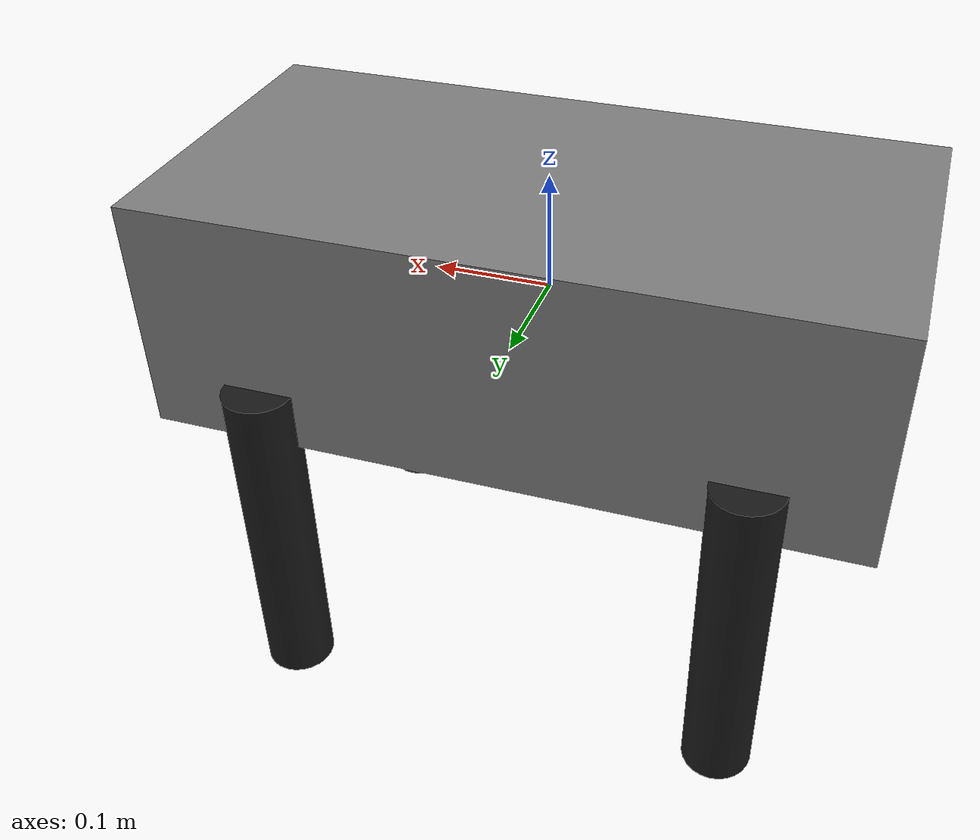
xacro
<?xml version="1.0"?>

<robot
  name="go2"
  xmlns:xacro="http://www.ros.org/wiki/xacro">

  <!-- ARGUMENTS -->

  <xacro:arg name="robot_namespace" default="go2_sim"/>

  <!-- MATERIALS -->

  <material name="gray">
    <color rgba="0.5 0.5 0.5 1.0"/>
  </material>

  <material name="black">
    <color rgba="0.1 0.1 0.1 1.0"/>
  </material>

  <!-- BODY -->

  <link name="base_link">

    <inertial>
      <mass value="12.0"/>
      <origin xyz="0 0 0"/>

      <inertia
        ixx="0.1"
        ixy="0.0"
        ixz="0.0"
        iyy="0.1"
        iyz="0.0"
        izz="0.1"/>
    </inertial>

    <visual>
      <geometry>
        <box size="0.60 0.30 0.20"/>
      </geometry>

      <material name="gray"/>
    </visual>

    <collision>
      <geometry>
        <box size="0.60 0.30 0.20"/>
      </geometry>
    </collision>

  </link>

  <!-- LEGS -->

  <xacro:macro name="leg_link" params="name">

    <link name="${name}">

      <inertial>
        <mass value="0.5"/>
        <origin xyz="0 0 0"/>

        <inertia
          ixx="0.001"
          ixy="0.0"
          ixz="0.0"
          iyy="0.001"
          iyz="0.0"
          izz="0.001"/>
      </inertial>

      <visual>
        <geometry>
          <cylinder radius="0.03" length="0.30"/>
        </geometry>

        <material name="black"/>
      </visual>

      <collision>
        <geometry>
          <cylinder radius="0.03" length="0.30"/>
        </geometry>
      </collision>

    </link>

  </xacro:macro>

  <xacro:leg_link name="front_left_leg"/>
  <xacro:leg_link name="front_right_leg"/>
  <xacro:leg_link name="rear_left_leg"/>
  <xacro:leg_link name="rear_right_leg"/>

  <!-- FIXED JOINTS -->

  <joint name="front_left_leg_joint" type="fixed">
    <parent link="base_link"/>
    <child link="front_left_leg"/>
    <origin xyz="0.2 0.15 -0.2"/>
  </joint>

  <joint name="front_right_leg_joint" type="fixed">
    <parent link="base_link"/>
    <child link="front_right_leg"/>
    <origin xyz="0.2 -0.15 -0.2"/>
  </joint>

  <joint name="rear_left_leg_joint" type="fixed">
    <parent link="base_link"/>
    <child link="rear_left_leg"/>
    <origin xyz="-0.2 0.15 -0.2"/>
  </joint>

  <joint name="rear_right_leg_joint" type="fixed">
    <parent link="base_link"/>
    <child link="rear_right_leg"/>
    <origin xyz="-0.2 -0.15 -0.2"/>
  </joint>
  <!-- GAZEBO DIFF DRIVE -->

  <gazebo>

    <plugin
      name="go2_drive_controller"
      filename="libgazebo_ros_planar_move.so">

      <robotNamespace>/go2_sim_1</robotNamespace>

      <commandTopic>cmd_vel</commandTopic>

      <odometryTopic>odom</odometryTopic>

      <odometryFrame>odom</odometryFrame>

      <robotBaseFrame>base_link</robotBaseFrame>

      <publishTF>true</publishTF>

      <updateRate>50.0</updateRate>

    </plugin>

  </gazebo>

</robot>
